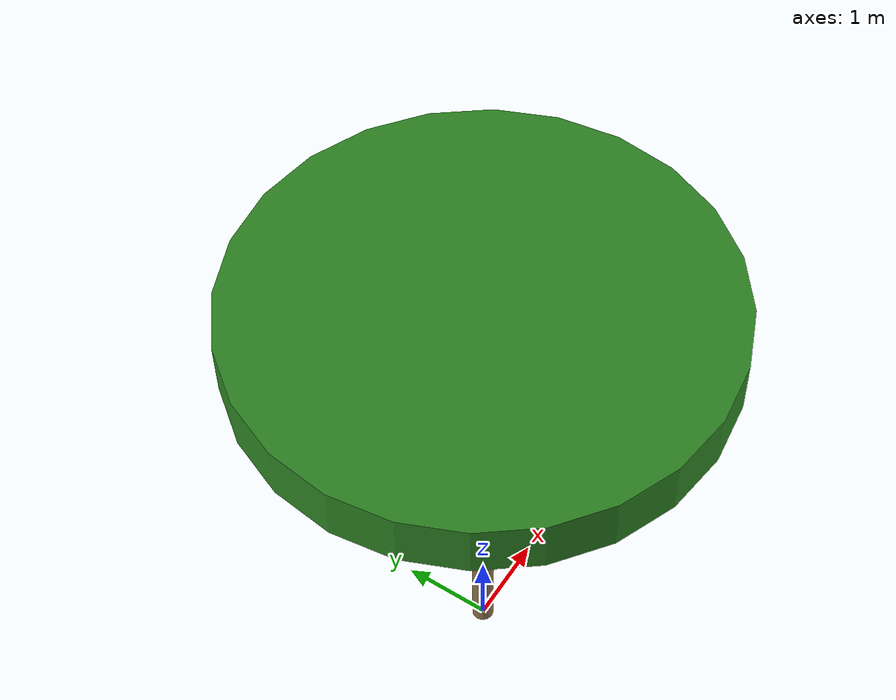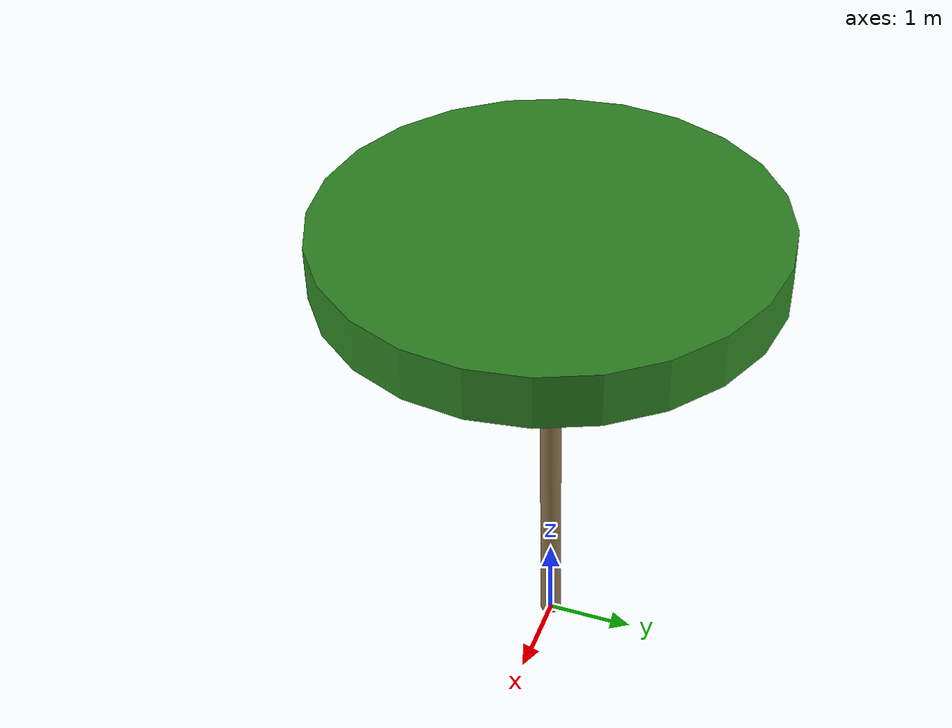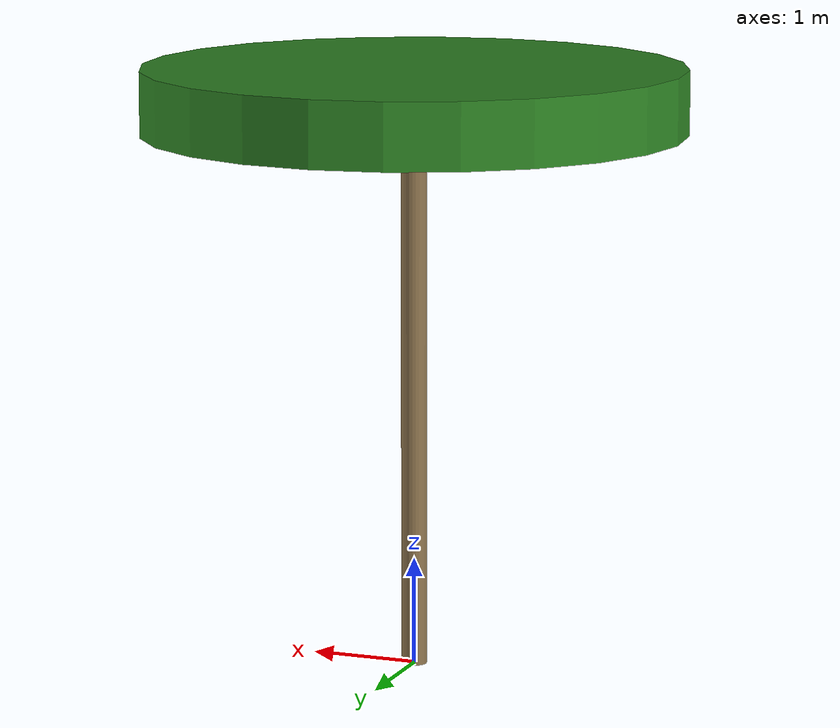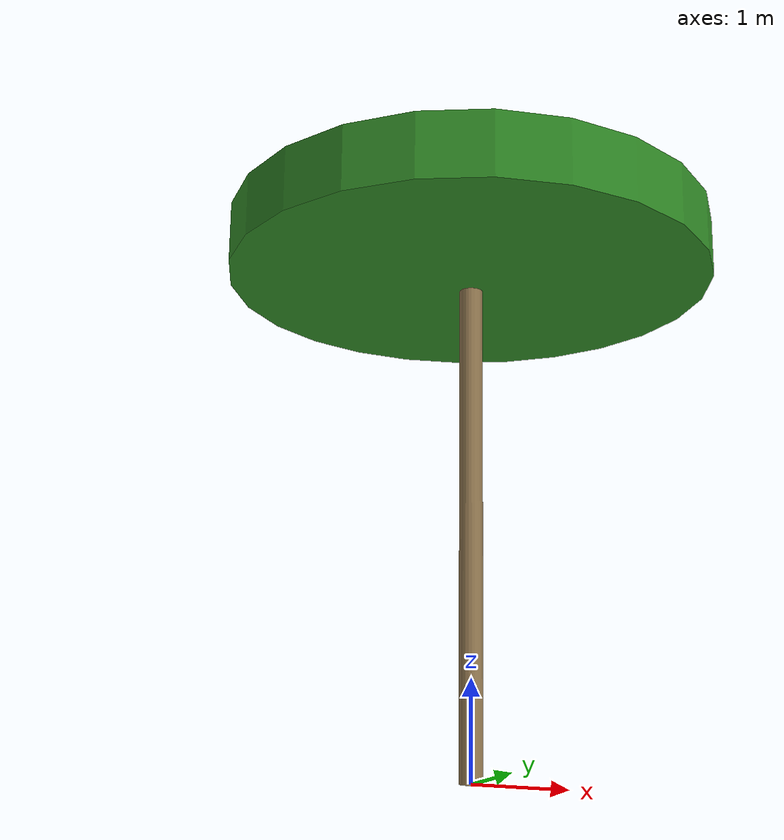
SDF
<?xml version="1.0" ?>
<sdf version="1.9">
  <model name="veg_palm">
    <static>true</static>
    <link name="link">
      <!-- Trunk -->
      <visual name="trunk">
        <geometry><cylinder><radius>0.12</radius><length>5.0</length></cylinder></geometry>
        <pose>0 0 2.5 0 0 0</pose>
        <material>
          <ambient>0.45 0.38 0.25 1</ambient>
          <diffuse>0.55 0.45 0.30 1</diffuse>
        </material>
      </visual>
      <!-- Crown -->
      <visual name="crown">
        <geometry><cylinder><radius>2.5</radius><length>0.6</length></cylinder></geometry>
        <pose>0 0 5.3 0 0 0</pose>
        <material>
          <ambient>0.12 0.42 0.10 1</ambient>
          <diffuse>0.18 0.52 0.14 1</diffuse>
        </material>
      </visual>
    </link>
  </model>
</sdf>
